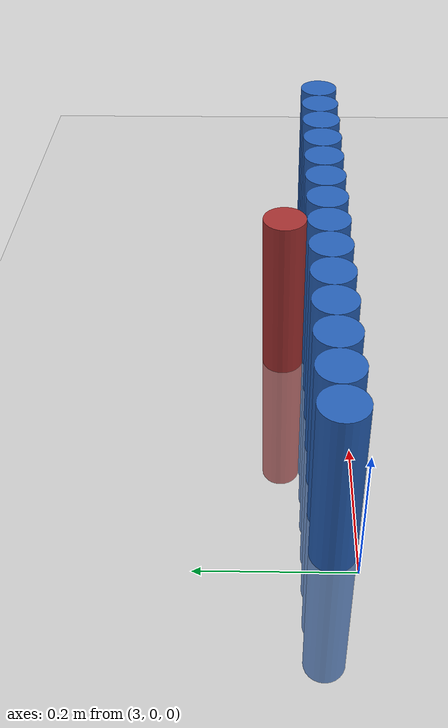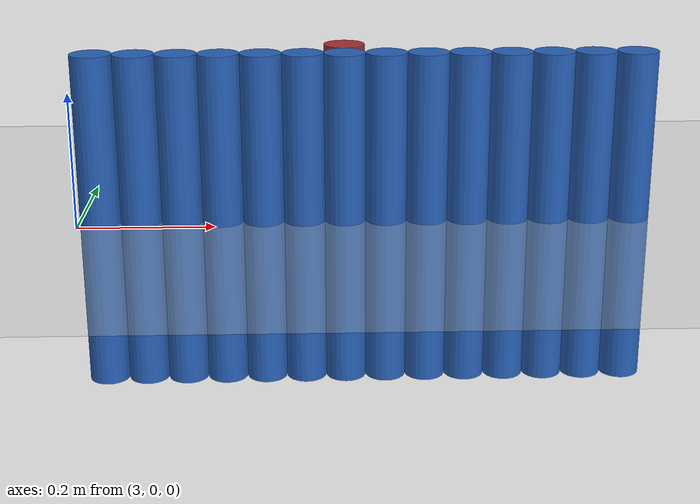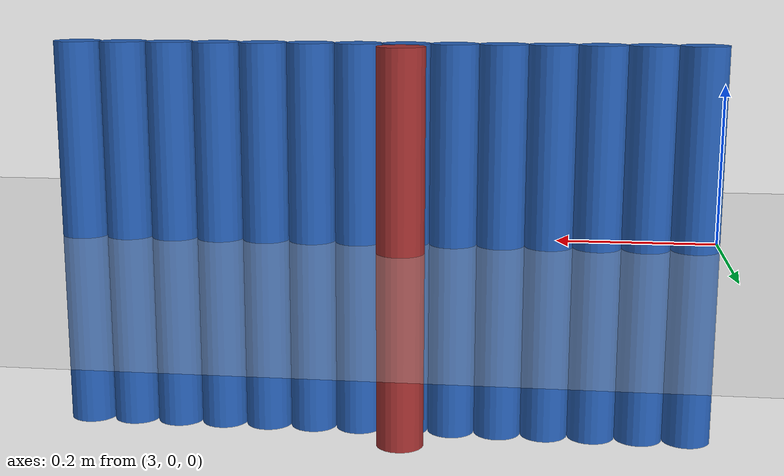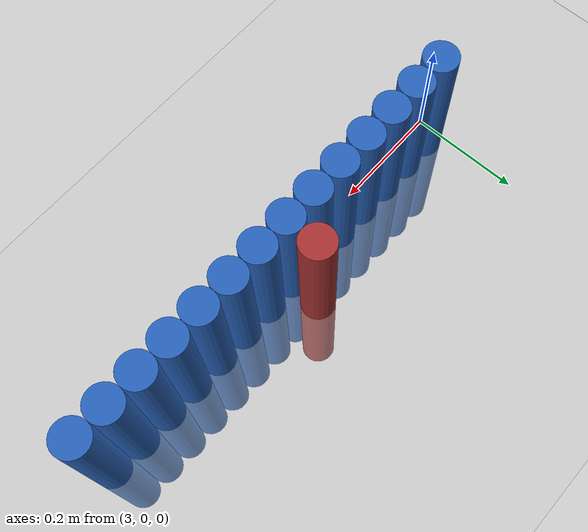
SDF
<sdf version="1.6">
 <world name="default">
  <model name="ground_plane">
   <static>1</static>
   <link name="link">
    <collision name="collision">
     <geometry><plane><normal>0 0 1</normal><size>100 100</size></plane></geometry>
     <surface><friction><ode><mu>100</mu><mu2>50</mu2></ode></friction></surface>
    </collision>
    <visual name="visual">
     <cast_shadows>0</cast_shadows>
     <geometry><plane><normal>0 0 1</normal><size>100 100</size></plane></geometry>
     <material>
      <script><uri>file://media/materials/scripts/gazebo.material</uri><name>Gazebo/Grey</name></script>
     </material>
    </visual>
   </link>
  </model>
  <model name="unit_cylinder_204">
   <static>1</static>
   <pose>3.390000 0.090000 0.000000 0.000000 0.000000 0.000000</pose>
   <link name="link">
    <inertial>
     <mass>1</mass>
     <inertia><ixx>0.145833</ixx><ixy>0</ixy><ixz>0</ixz><iyy>0.145833</iyy><iyz>0</iyz><izz>0.125</izz></inertia>
    </inertial>
    <collision name="collision">
     <geometry><cylinder><radius>0.030000</radius><length>0.5</length></cylinder></geometry>
    </collision>
    <visual name="visual">
     <geometry><cylinder><radius>0.030000</radius><length>0.5</length></cylinder></geometry>
     <material>
      <ambient>0.648000 0.192000 0.192000 1</ambient>
      <diffuse>0.648000 0.192000 0.192000 1</diffuse>
     </material>
     <material>
      <script><name>Gazebo/Grey</name><uri>file://media/materials/scripts/gazebo.material</uri></script>
     </material>
    </visual>
   </link>
  </model>
  <model name="unit_cylinder_223">
   <static>1</static>
   <pose>3.030000 0.030000 0.000000 0.000000 0.000000 0.000000</pose>
   <link name="link">
    <inertial>
     <mass>1</mass>
     <inertia><ixx>0.145833</ixx><ixy>0</ixy><ixz>0</ixz><iyy>0.145833</iyy><iyz>0</iyz><izz>0.125</izz></inertia>
    </inertial>
    <collision name="collision">
     <geometry><cylinder><radius>0.030000</radius><length>0.5</length></cylinder></geometry>
    </collision>
    <visual name="visual">
     <geometry><cylinder><radius>0.030000</radius><length>0.5</length></cylinder></geometry>
     <material>
      <ambient>0.152000 0.379000 0.720000 1</ambient>
      <diffuse>0.152000 0.379000 0.720000 1</diffuse>
     </material>
     <material>
      <script><name>Gazebo/Grey</name><uri>file://media/materials/scripts/gazebo.material</uri></script>
     </material>
    </visual>
   </link>
  </model>
  <model name="unit_cylinder_224">
   <static>1</static>
   <pose>3.090000 0.030000 0.000000 0.000000 0.000000 0.000000</pose>
   <link name="link">
    <inertial>
     <mass>1</mass>
     <inertia><ixx>0.145833</ixx><ixy>0</ixy><ixz>0</ixz><iyy>0.145833</iyy><iyz>0</iyz><izz>0.125</izz></inertia>
    </inertial>
    <collision name="collision">
     <geometry><cylinder><radius>0.030000</radius><length>0.5</length></cylinder></geometry>
    </collision>
    <visual name="visual">
     <geometry><cylinder><radius>0.030000</radius><length>0.5</length></cylinder></geometry>
     <material>
      <ambient>0.152000 0.379000 0.720000 1</ambient>
      <diffuse>0.152000 0.379000 0.720000 1</diffuse>
     </material>
     <material>
      <script><name>Gazebo/Grey</name><uri>file://media/materials/scripts/gazebo.material</uri></script>
     </material>
    </visual>
   </link>
  </model>
  <model name="unit_cylinder_225">
   <static>1</static>
   <pose>3.150000 0.030000 0.000000 0.000000 0.000000 0.000000</pose>
   <link name="link">
    <inertial>
     <mass>1</mass>
     <inertia><ixx>0.145833</ixx><ixy>0</ixy><ixz>0</ixz><iyy>0.145833</iyy><iyz>0</iyz><izz>0.125</izz></inertia>
    </inertial>
    <collision name="collision">
     <geometry><cylinder><radius>0.030000</radius><length>0.5</length></cylinder></geometry>
    </collision>
    <visual name="visual">
     <geometry><cylinder><radius>0.030000</radius><length>0.5</length></cylinder></geometry>
     <material>
      <ambient>0.152000 0.379000 0.720000 1</ambient>
      <diffuse>0.152000 0.379000 0.720000 1</diffuse>
     </material>
     <material>
      <script><name>Gazebo/Grey</name><uri>file://media/materials/scripts/gazebo.material</uri></script>
     </material>
    </visual>
   </link>
  </model>
  <model name="unit_cylinder_226">
   <static>1</static>
   <pose>3.210000 0.030000 0.000000 0.000000 0.000000 0.000000</pose>
   <link name="link">
    <inertial>
     <mass>1</mass>
     <inertia><ixx>0.145833</ixx><ixy>0</ixy><ixz>0</ixz><iyy>0.145833</iyy><iyz>0</iyz><izz>0.125</izz></inertia>
    </inertial>
    <collision name="collision">
     <geometry><cylinder><radius>0.030000</radius><length>0.5</length></cylinder></geometry>
    </collision>
    <visual name="visual">
     <geometry><cylinder><radius>0.030000</radius><length>0.5</length></cylinder></geometry>
     <material>
      <ambient>0.152000 0.379000 0.720000 1</ambient>
      <diffuse>0.152000 0.379000 0.720000 1</diffuse>
     </material>
     <material>
      <script><name>Gazebo/Grey</name><uri>file://media/materials/scripts/gazebo.material</uri></script>
     </material>
    </visual>
   </link>
  </model>
  <model name="unit_cylinder_227">
   <static>1</static>
   <pose>3.270000 0.030000 0.000000 0.000000 0.000000 0.000000</pose>
   <link name="link">
    <inertial>
     <mass>1</mass>
     <inertia><ixx>0.145833</ixx><ixy>0</ixy><ixz>0</ixz><iyy>0.145833</iyy><iyz>0</iyz><izz>0.125</izz></inertia>
    </inertial>
    <collision name="collision">
     <geometry><cylinder><radius>0.030000</radius><length>0.5</length></cylinder></geometry>
    </collision>
    <visual name="visual">
     <geometry><cylinder><radius>0.030000</radius><length>0.5</length></cylinder></geometry>
     <material>
      <ambient>0.152000 0.379000 0.720000 1</ambient>
      <diffuse>0.152000 0.379000 0.720000 1</diffuse>
     </material>
     <material>
      <script><name>Gazebo/Grey</name><uri>file://media/materials/scripts/gazebo.material</uri></script>
     </material>
    </visual>
   </link>
  </model>
  <model name="unit_cylinder_228">
   <static>1</static>
   <pose>3.330000 0.030000 0.000000 0.000000 0.000000 0.000000</pose>
   <link name="link">
    <inertial>
     <mass>1</mass>
     <inertia><ixx>0.145833</ixx><ixy>0</ixy><ixz>0</ixz><iyy>0.145833</iyy><iyz>0</iyz><izz>0.125</izz></inertia>
    </inertial>
    <collision name="collision">
     <geometry><cylinder><radius>0.030000</radius><length>0.5</length></cylinder></geometry>
    </collision>
    <visual name="visual">
     <geometry><cylinder><radius>0.030000</radius><length>0.5</length></cylinder></geometry>
     <material>
      <ambient>0.152000 0.379000 0.720000 1</ambient>
      <diffuse>0.152000 0.379000 0.720000 1</diffuse>
     </material>
     <material>
      <script><name>Gazebo/Grey</name><uri>file://media/materials/scripts/gazebo.material</uri></script>
     </material>
    </visual>
   </link>
  </model>
  <model name="unit_cylinder_229">
   <static>1</static>
   <pose>3.390000 0.030000 0.000000 0.000000 0.000000 0.000000</pose>
   <link name="link">
    <inertial>
     <mass>1</mass>
     <inertia><ixx>0.145833</ixx><ixy>0</ixy><ixz>0</ixz><iyy>0.145833</iyy><iyz>0</iyz><izz>0.125</izz></inertia>
    </inertial>
    <collision name="collision">
     <geometry><cylinder><radius>0.030000</radius><length>0.5</length></cylinder></geometry>
    </collision>
    <visual name="visual">
     <geometry><cylinder><radius>0.030000</radius><length>0.5</length></cylinder></geometry>
     <material>
      <ambient>0.152000 0.379000 0.720000 1</ambient>
      <diffuse>0.152000 0.379000 0.720000 1</diffuse>
     </material>
     <material>
      <script><name>Gazebo/Grey</name><uri>file://media/materials/scripts/gazebo.material</uri></script>
     </material>
    </visual>
   </link>
  </model>
  <model name="unit_cylinder_230">
   <static>1</static>
   <pose>3.450000 0.030000 0.000000 0.000000 0.000000 0.000000</pose>
   <link name="link">
    <inertial>
     <mass>1</mass>
     <inertia><ixx>0.145833</ixx><ixy>0</ixy><ixz>0</ixz><iyy>0.145833</iyy><iyz>0</iyz><izz>0.125</izz></inertia>
    </inertial>
    <collision name="collision">
     <geometry><cylinder><radius>0.030000</radius><length>0.5</length></cylinder></geometry>
    </collision>
    <visual name="visual">
     <geometry><cylinder><radius>0.030000</radius><length>0.5</length></cylinder></geometry>
     <material>
      <ambient>0.152000 0.379000 0.720000 1</ambient>
      <diffuse>0.152000 0.379000 0.720000 1</diffuse>
     </material>
     <material>
      <script><name>Gazebo/Grey</name><uri>file://media/materials/scripts/gazebo.material</uri></script>
     </material>
    </visual>
   </link>
  </model>
  <model name="unit_cylinder_231">
   <static>1</static>
   <pose>3.510000 0.030000 0.000000 0.000000 0.000000 0.000000</pose>
   <link name="link">
    <inertial>
     <mass>1</mass>
     <inertia><ixx>0.145833</ixx><ixy>0</ixy><ixz>0</ixz><iyy>0.145833</iyy><iyz>0</iyz><izz>0.125</izz></inertia>
    </inertial>
    <collision name="collision">
     <geometry><cylinder><radius>0.030000</radius><length>0.5</length></cylinder></geometry>
    </collision>
    <visual name="visual">
     <geometry><cylinder><radius>0.030000</radius><length>0.5</length></cylinder></geometry>
     <material>
      <ambient>0.152000 0.379000 0.720000 1</ambient>
      <diffuse>0.152000 0.379000 0.720000 1</diffuse>
     </material>
     <material>
      <script><name>Gazebo/Grey</name><uri>file://media/materials/scripts/gazebo.material</uri></script>
     </material>
    </visual>
   </link>
  </model>
  <model name="unit_cylinder_232">
   <static>1</static>
   <pose>3.570000 0.030000 0.000000 0.000000 0.000000 0.000000</pose>
   <link name="link">
    <inertial>
     <mass>1</mass>
     <inertia><ixx>0.145833</ixx><ixy>0</ixy><ixz>0</ixz><iyy>0.145833</iyy><iyz>0</iyz><izz>0.125</izz></inertia>
    </inertial>
    <collision name="collision">
     <geometry><cylinder><radius>0.030000</radius><length>0.5</length></cylinder></geometry>
    </collision>
    <visual name="visual">
     <geometry><cylinder><radius>0.030000</radius><length>0.5</length></cylinder></geometry>
     <material>
      <ambient>0.152000 0.379000 0.720000 1</ambient>
      <diffuse>0.152000 0.379000 0.720000 1</diffuse>
     </material>
     <material>
      <script><name>Gazebo/Grey</name><uri>file://media/materials/scripts/gazebo.material</uri></script>
     </material>
    </visual>
   </link>
  </model>
  <model name="unit_cylinder_233">
   <static>1</static>
   <pose>3.630000 0.030000 0.000000 0.000000 0.000000 0.000000</pose>
   <link name="link">
    <inertial>
     <mass>1</mass>
     <inertia><ixx>0.145833</ixx><ixy>0</ixy><ixz>0</ixz><iyy>0.145833</iyy><iyz>0</iyz><izz>0.125</izz></inertia>
    </inertial>
    <collision name="collision">
     <geometry><cylinder><radius>0.030000</radius><length>0.5</length></cylinder></geometry>
    </collision>
    <visual name="visual">
     <geometry><cylinder><radius>0.030000</radius><length>0.5</length></cylinder></geometry>
     <material>
      <ambient>0.152000 0.379000 0.720000 1</ambient>
      <diffuse>0.152000 0.379000 0.720000 1</diffuse>
     </material>
     <material>
      <script><name>Gazebo/Grey</name><uri>file://media/materials/scripts/gazebo.material</uri></script>
     </material>
    </visual>
   </link>
  </model>
  <model name="unit_cylinder_234">
   <static>1</static>
   <pose>3.690000 0.030000 0.000000 0.000000 0.000000 0.000000</pose>
   <link name="link">
    <inertial>
     <mass>1</mass>
     <inertia><ixx>0.145833</ixx><ixy>0</ixy><ixz>0</ixz><iyy>0.145833</iyy><iyz>0</iyz><izz>0.125</izz></inertia>
    </inertial>
    <collision name="collision">
     <geometry><cylinder><radius>0.030000</radius><length>0.5</length></cylinder></geometry>
    </collision>
    <visual name="visual">
     <geometry><cylinder><radius>0.030000</radius><length>0.5</length></cylinder></geometry>
     <material>
      <ambient>0.152000 0.379000 0.720000 1</ambient>
      <diffuse>0.152000 0.379000 0.720000 1</diffuse>
     </material>
     <material>
      <script><name>Gazebo/Grey</name><uri>file://media/materials/scripts/gazebo.material</uri></script>
     </material>
    </visual>
   </link>
  </model>
  <model name="unit_cylinder_235">
   <static>1</static>
   <pose>3.750000 0.030000 0.000000 0.000000 0.000000 0.000000</pose>
   <link name="link">
    <inertial>
     <mass>1</mass>
     <inertia><ixx>0.145833</ixx><ixy>0</ixy><ixz>0</ixz><iyy>0.145833</iyy><iyz>0</iyz><izz>0.125</izz></inertia>
    </inertial>
    <collision name="collision">
     <geometry><cylinder><radius>0.030000</radius><length>0.5</length></cylinder></geometry>
    </collision>
    <visual name="visual">
     <geometry><cylinder><radius>0.030000</radius><length>0.5</length></cylinder></geometry>
     <material>
      <ambient>0.152000 0.379000 0.720000 1</ambient>
      <diffuse>0.152000 0.379000 0.720000 1</diffuse>
     </material>
     <material>
      <script><name>Gazebo/Grey</name><uri>file://media/materials/scripts/gazebo.material</uri></script>
     </material>
    </visual>
   </link>
  </model>
  <model name="unit_cylinder_236">
   <static>1</static>
   <pose>3.810000 0.030000 0.000000 0.000000 0.000000 0.000000</pose>
   <link name="link">
    <inertial>
     <mass>1</mass>
     <inertia><ixx>0.145833</ixx><ixy>0</ixy><ixz>0</ixz><iyy>0.145833</iyy><iyz>0</iyz><izz>0.125</izz></inertia>
    </inertial>
    <collision name="collision">
     <geometry><cylinder><radius>0.030000</radius><length>0.5</length></cylinder></geometry>
    </collision>
    <visual name="visual">
     <geometry><cylinder><radius>0.030000</radius><length>0.5</length></cylinder></geometry>
     <material>
      <ambient>0.152000 0.379000 0.720000 1</ambient>
      <diffuse>0.152000 0.379000 0.720000 1</diffuse>
     </material>
     <material>
      <script><name>Gazebo/Grey</name><uri>file://media/materials/scripts/gazebo.material</uri></script>
     </material>
    </visual>
   </link>
  </model>
 </world>
</sdf>
